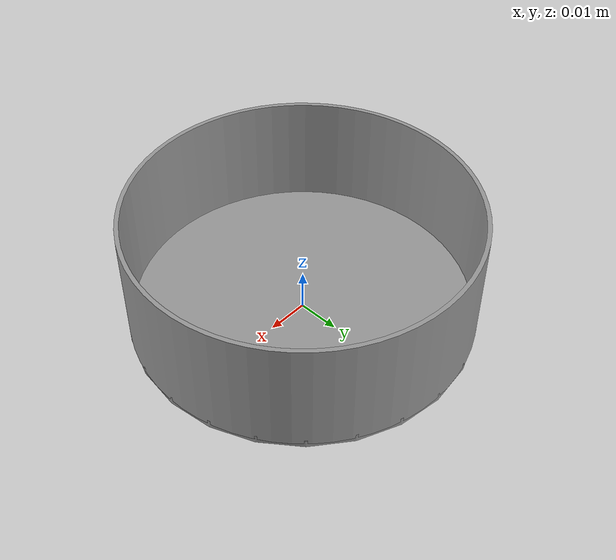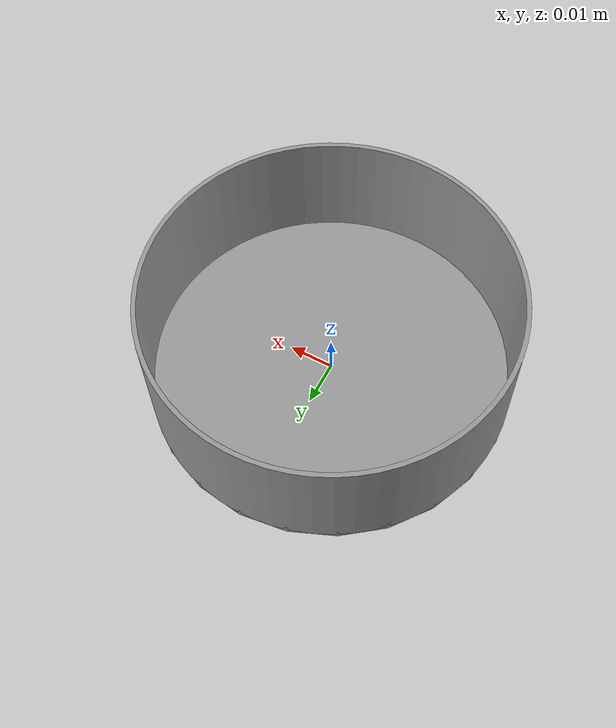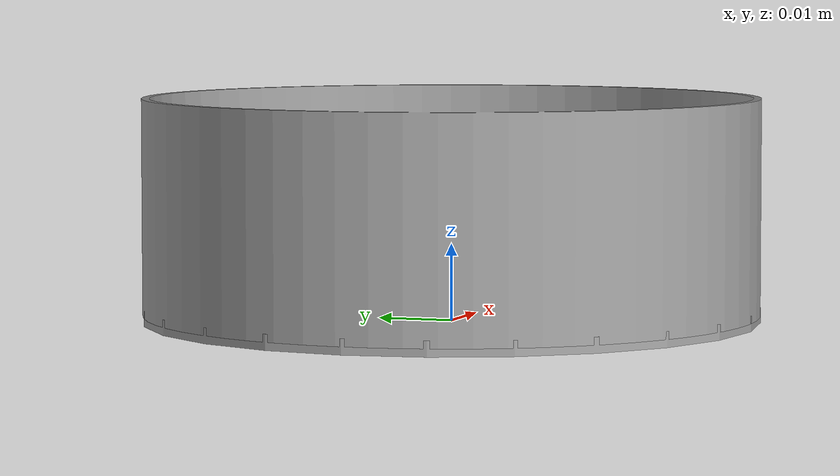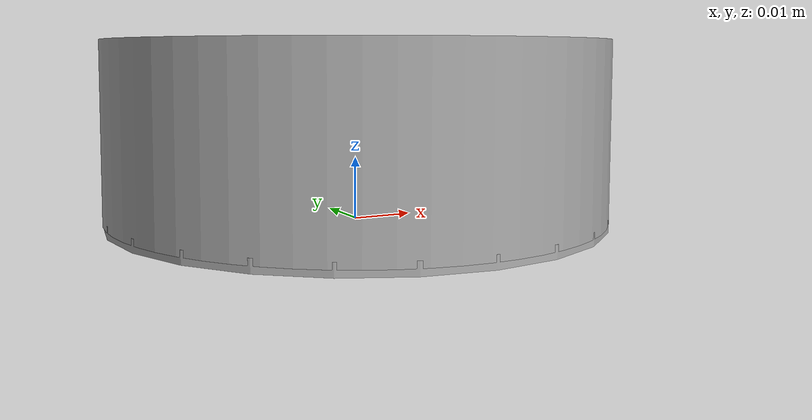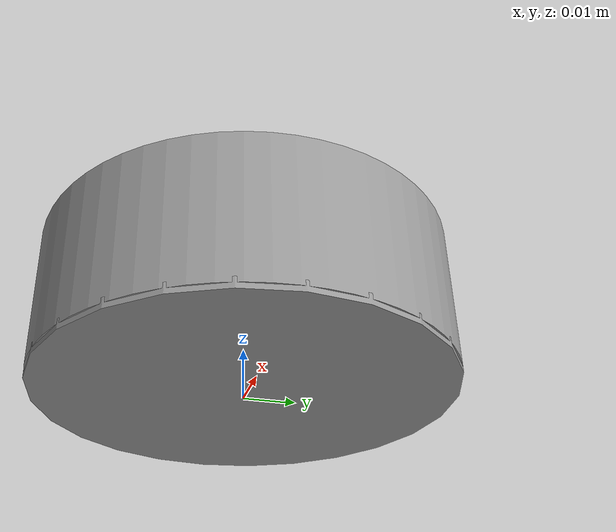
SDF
<?xml version='1.0'?>
<sdf version='1.7'>
  <model name='round_tin_base'>
    <link name='link'>
      <inertial>
        <pose>0 0 0.014085 0 -0 0</pose>
        <mass>0.0223</mass>
        <inertia>
          <ixx>1.93147e-05</ixx>
          <ixy>0</ixy>
          <ixz>0</ixz>
          <iyy>1.93147e-05</iyy>
          <iyz>0</iyz>
          <izz>3.568e-05</izz>
        </inertia>
      </inertial>
      <self_collide>0</self_collide>
      <enable_wind>0</enable_wind>
      <kinematic>0</kinematic>
      <pose>0 0 0 0 -0 0</pose>
      <visual name='visual_cylinder'>
        <pose>0 0 0.001 0 -0 0</pose>
        <geometry>
          <cylinder>
            <radius>0.04</radius>
            <length>0.002</length>
          </cylinder>
        </geometry>
        <material>
          <script>
            <uri>file://media/materials/scripts/gazebo.material</uri>
            <name>Gazebo/Grey</name>
          </script>
          <shader type='pixel'/>
        </material>
        <transparency>0</transparency>
        <cast_shadows>1</cast_shadows>
      </visual>
      <visual name='visual_mesh'>
        <pose>0 0 0.001 0 -0 0</pose>
        <geometry>
          <mesh>
            <uri>model://round_tin_base/meshes/round_tin_base.dae</uri>
          </mesh>
        </geometry>
        <material>
          <script>
            <uri>file://media/materials/scripts/gazebo.material</uri>
            <name>Gazebo/Grey</name>
          </script>
          <shader type='pixel'/>
        </material>
        <transparency>0</transparency>
        <cast_shadows>1</cast_shadows>
      </visual>
      <collision name='collision_cylinder'>
        <laser_retro>0</laser_retro>
        <max_contacts>10</max_contacts>
        <pose>0 0 0.001 0 -0 0</pose>
        <geometry>
          <cylinder>
            <radius>0.04</radius>
            <length>0.002</length>
          </cylinder>
        </geometry>
        <surface>
          <friction>
            <ode>
              <mu>1</mu>
              <mu2>1</mu2>
              <fdir1>0 0 0</fdir1>
              <slip1>0</slip1>
              <slip2>0</slip2>
            </ode>
            <torsional>
              <coefficient>1</coefficient>
              <patch_radius>0</patch_radius>
              <surface_radius>0.01</surface_radius>
              <use_patch_radius>0</use_patch_radius>
              <ode>
                <slip>0</slip>
              </ode>
            </torsional>
          </friction>
          <bounce>
            <restitution_coefficient>0</restitution_coefficient>
            <threshold>1e+06</threshold>
          </bounce>
          <contact>
            <collide_without_contact>0</collide_without_contact>
            <collide_without_contact_bitmask>1</collide_without_contact_bitmask>
            <collide_bitmask>1</collide_bitmask>
            <ode>
              <soft_cfm>0</soft_cfm>
              <soft_erp>0.2</soft_erp>
              <kp>100000</kp>
              <kd>100</kd>
              <max_vel>100</max_vel>
              <min_depth>0.001</min_depth>
            </ode>
            <bullet>
              <split_impulse>1</split_impulse>
              <split_impulse_penetration_threshold>-0.01</split_impulse_penetration_threshold>
              <soft_cfm>0</soft_cfm>
              <soft_erp>0.2</soft_erp>
              <kp>100000</kp>
              <kd>100</kd>
            </bullet>
          </contact>
        </surface>
      </collision>
      <collision name='collision_mesh'>
        <laser_retro>0</laser_retro>
        <max_contacts>10</max_contacts>
        <pose>0 0 0.001 0 -0 0</pose>
        <geometry>
          <mesh>
            <uri>/home/user/.gazebo/models/round_tin_base/meshes/round_tin_base.dae</uri>
            <scale>1 1 1</scale>
          </mesh>
        </geometry>
        <surface>
          <friction>
            <ode>
              <mu>1</mu>
              <mu2>1</mu2>
              <fdir1>0 0 0</fdir1>
              <slip1>0</slip1>
              <slip2>0</slip2>
            </ode>
            <torsional>
              <coefficient>1</coefficient>
              <patch_radius>0</patch_radius>
              <surface_radius>0</surface_radius>
              <use_patch_radius>1</use_patch_radius>
              <ode>
                <slip>0</slip>
              </ode>
            </torsional>
          </friction>
          <bounce>
            <restitution_coefficient>0</restitution_coefficient>
            <threshold>1e+06</threshold>
          </bounce>
          <contact>
            <collide_without_contact>0</collide_without_contact>
            <collide_without_contact_bitmask>1</collide_without_contact_bitmask>
            <collide_bitmask>1</collide_bitmask>
            <ode>
              <soft_cfm>0</soft_cfm>
              <soft_erp>0.2</soft_erp>
              <kp>1e+13</kp>
              <kd>1</kd>
              <max_vel>0.1</max_vel>
              <min_depth>0.0001</min_depth>
            </ode>
            <bullet>
              <split_impulse>1</split_impulse>
              <split_impulse_penetration_threshold>-0.01</split_impulse_penetration_threshold>
              <soft_cfm>0</soft_cfm>
              <soft_erp>0.2</soft_erp>
              <kp>1e+13</kp>
              <kd>1</kd>
            </bullet>
          </contact>
        </surface>
      </collision>
    </link>
    <static>0</static>
    <allow_auto_disable>1</allow_auto_disable>
  </model>
</sdf>
